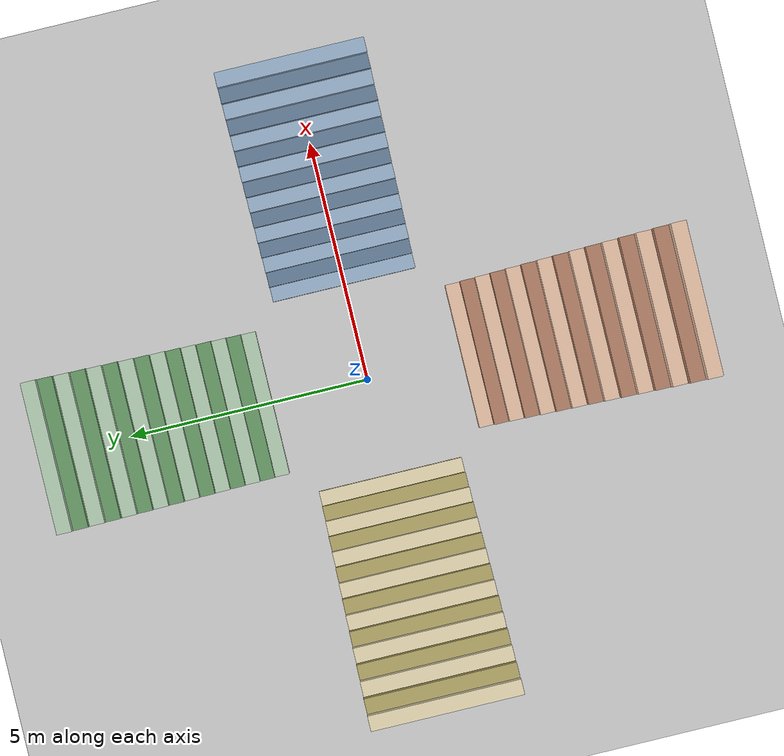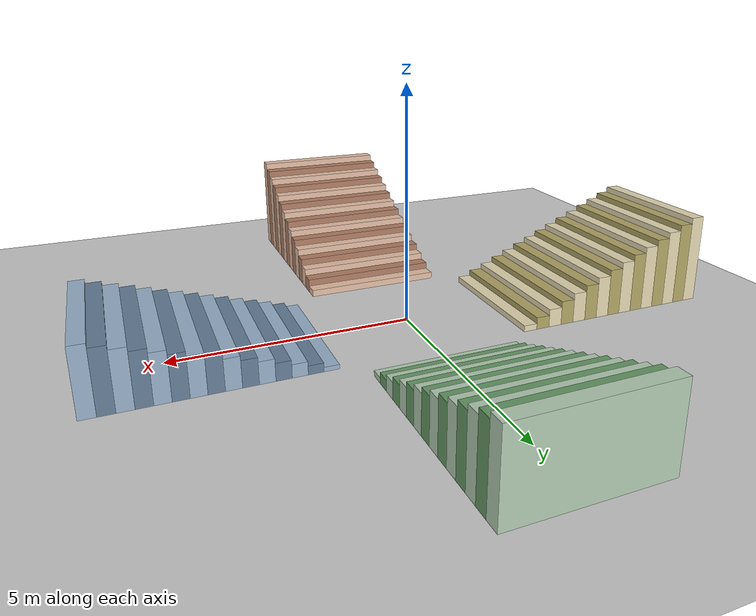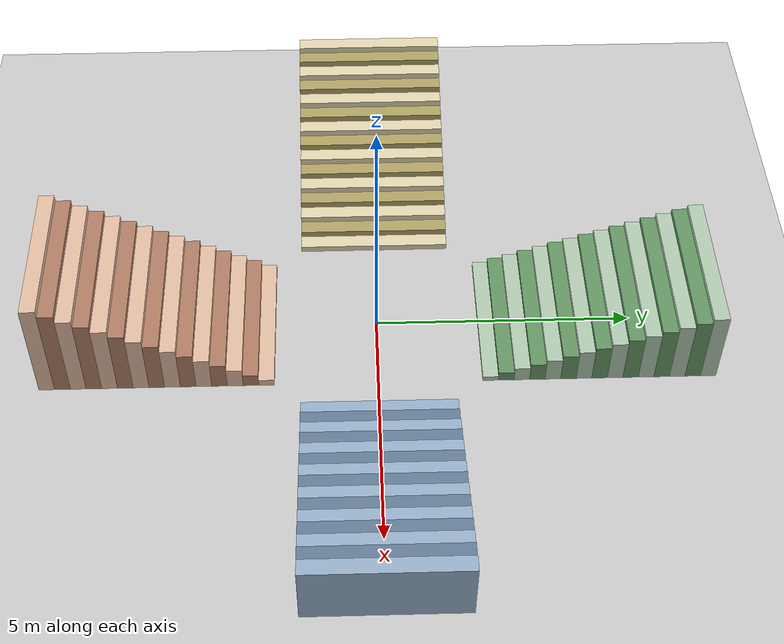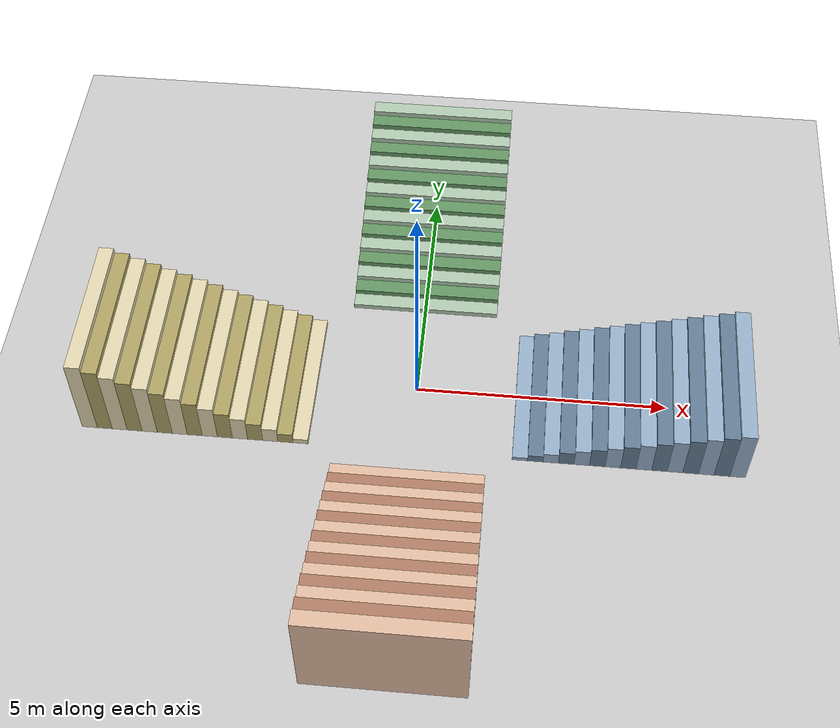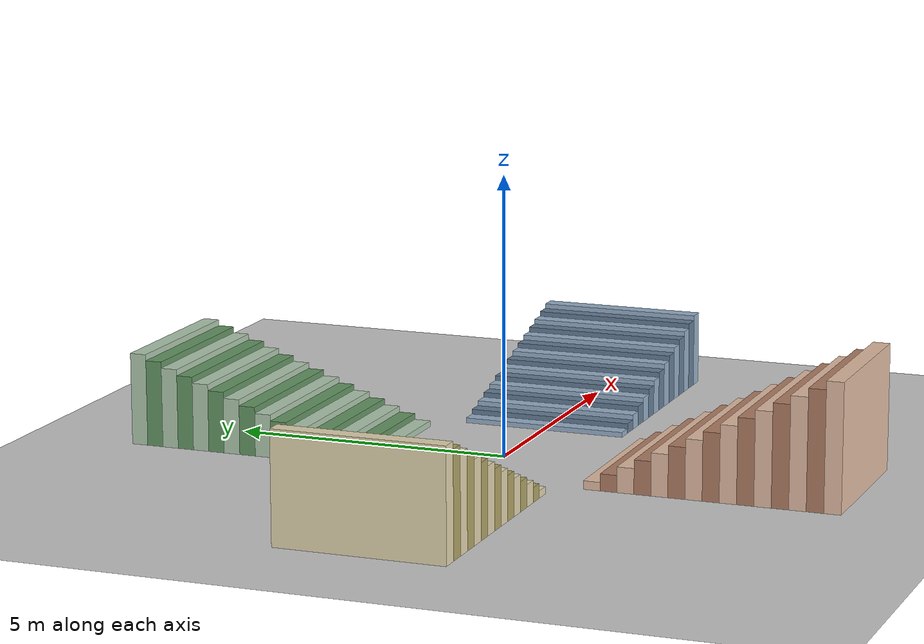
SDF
<?xml version="1.0" ?>
<sdf version="1.5">
  <world name="quadruped_stair_pro_v3_friction">

    <physics type="ode">
      <max_step_size>0.0005</max_step_size>
      <real_time_factor>1</real_time_factor>
      <real_time_update_rate>2000</real_time_update_rate>
      <gravity>0 0 -9.81</gravity>
      <ode>
        <solver>
          <type>quick</type>
          <iters>150</iters>
          <sor>1.0</sor>
        </solver>
        <constraints>
          <cfm>0.0001</cfm>
          <erp>0.2</erp>
          <contact_max_correcting_vel>10.0</contact_max_correcting_vel>
          <contact_surface_layer>0.001</contact_surface_layer>
        </constraints>
      </ode>
    </physics>

    <include><uri>model://sun</uri></include>

    <model name="ground_plane_friction">
      <static>true</static>
      <link name="link">
        <collision name="collision">
          <geometry><plane><normal>0 0 1</normal><size>100 100</size></plane></geometry>
          <surface>
            <friction>
              <ode><mu>1.0</mu><mu2>1.0</mu2></ode>
            </friction>
          </surface>
        </collision>
        <visual name="visual">
          <geometry><plane><normal>0 0 1</normal><size>100 100</size></plane></geometry>
          <material><ambient>0.8 0.8 0.8 1</ambient><diffuse>0.8 0.8 0.8 1</diffuse></material>
        </visual>
      </link>
    </model>

    <model name="stair_challenge_env">
        <static>true</static>

        <link name="step_9cm_1"><pose>2.15 0 0.045 0 0 0</pose><visual name="v"><geometry><box><size>0.3 3.0 0.09</size></box></geometry><material><ambient>0.6 0.7 0.8 1</ambient><diffuse>0.6 0.7 0.8 1</diffuse></material></visual><collision name="c"><geometry><box><size>0.3 3.0 0.09</size></box></geometry><surface><friction><ode><mu>1.0</mu><mu2>1.0</mu2></ode></friction></surface></collision></link>
        <link name="step_9cm_2"><pose>2.45 0 0.090 0 0 0</pose><visual name="v"><geometry><box><size>0.3 3.0 0.18</size></box></geometry><material><ambient>0.4 0.5 0.6 1</ambient><diffuse>0.4 0.5 0.6 1</diffuse></material></visual><collision name="c"><geometry><box><size>0.3 3.0 0.18</size></box></geometry><surface><friction><ode><mu>1.0</mu><mu2>1.0</mu2></ode></friction></surface></collision></link>
        <link name="step_9cm_3"><pose>2.75 0 0.135 0 0 0</pose><visual name="v"><geometry><box><size>0.3 3.0 0.27</size></box></geometry><material><ambient>0.6 0.7 0.8 1</ambient><diffuse>0.6 0.7 0.8 1</diffuse></material></visual><collision name="c"><geometry><box><size>0.3 3.0 0.27</size></box></geometry><surface><friction><ode><mu>1.0</mu><mu2>1.0</mu2></ode></friction></surface></collision></link>
        <link name="step_9cm_4"><pose>3.05 0 0.180 0 0 0</pose><visual name="v"><geometry><box><size>0.3 3.0 0.36</size></box></geometry><material><ambient>0.4 0.5 0.6 1</ambient><diffuse>0.4 0.5 0.6 1</diffuse></material></visual><collision name="c"><geometry><box><size>0.3 3.0 0.36</size></box></geometry><surface><friction><ode><mu>1.0</mu><mu2>1.0</mu2></ode></friction></surface></collision></link>
        <link name="step_9cm_5"><pose>3.35 0 0.225 0 0 0</pose><visual name="v"><geometry><box><size>0.3 3.0 0.45</size></box></geometry><material><ambient>0.6 0.7 0.8 1</ambient><diffuse>0.6 0.7 0.8 1</diffuse></material></visual><collision name="c"><geometry><box><size>0.3 3.0 0.45</size></box></geometry><surface><friction><ode><mu>1.0</mu><mu2>1.0</mu2></ode></friction></surface></collision></link>
        <link name="step_9cm_6"><pose>3.65 0 0.270 0 0 0</pose><visual name="v"><geometry><box><size>0.3 3.0 0.54</size></box></geometry><material><ambient>0.4 0.5 0.6 1</ambient><diffuse>0.4 0.5 0.6 1</diffuse></material></visual><collision name="c"><geometry><box><size>0.3 3.0 0.54</size></box></geometry><surface><friction><ode><mu>1.0</mu><mu2>1.0</mu2></ode></friction></surface></collision></link>
        <link name="step_9cm_7"><pose>3.95 0 0.315 0 0 0</pose><visual name="v"><geometry><box><size>0.3 3.0 0.63</size></box></geometry><material><ambient>0.6 0.7 0.8 1</ambient><diffuse>0.6 0.7 0.8 1</diffuse></material></visual><collision name="c"><geometry><box><size>0.3 3.0 0.63</size></box></geometry><surface><friction><ode><mu>1.0</mu><mu2>1.0</mu2></ode></friction></surface></collision></link>
        <link name="step_9cm_8"><pose>4.25 0 0.360 0 0 0</pose><visual name="v"><geometry><box><size>0.3 3.0 0.72</size></box></geometry><material><ambient>0.4 0.5 0.6 1</ambient><diffuse>0.4 0.5 0.6 1</diffuse></material></visual><collision name="c"><geometry><box><size>0.3 3.0 0.72</size></box></geometry><surface><friction><ode><mu>1.0</mu><mu2>1.0</mu2></ode></friction></surface></collision></link>
        <link name="step_9cm_9"><pose>4.55 0 0.405 0 0 0</pose><visual name="v"><geometry><box><size>0.3 3.0 0.81</size></box></geometry><material><ambient>0.6 0.7 0.8 1</ambient><diffuse>0.6 0.7 0.8 1</diffuse></material></visual><collision name="c"><geometry><box><size>0.3 3.0 0.81</size></box></geometry><surface><friction><ode><mu>1.0</mu><mu2>1.0</mu2></ode></friction></surface></collision></link>
        <link name="step_9cm_10"><pose>4.85 0 0.450 0 0 0</pose><visual name="v"><geometry><box><size>0.3 3.0 0.90</size></box></geometry><material><ambient>0.4 0.5 0.6 1</ambient><diffuse>0.4 0.5 0.6 1</diffuse></material></visual><collision name="c"><geometry><box><size>0.3 3.0 0.90</size></box></geometry><surface><friction><ode><mu>1.0</mu><mu2>1.0</mu2></ode></friction></surface></collision></link>
        <link name="step_9cm_11"><pose>5.15 0 0.495 0 0 0</pose><visual name="v"><geometry><box><size>0.3 3.0 0.99</size></box></geometry><material><ambient>0.6 0.7 0.8 1</ambient><diffuse>0.6 0.7 0.8 1</diffuse></material></visual><collision name="c"><geometry><box><size>0.3 3.0 0.99</size></box></geometry><surface><friction><ode><mu>1.0</mu><mu2>1.0</mu2></ode></friction></surface></collision></link>
        <link name="step_9cm_12"><pose>5.45 0 0.540 0 0 0</pose><visual name="v"><geometry><box><size>0.3 3.0 1.08</size></box></geometry><material><ambient>0.4 0.5 0.6 1</ambient><diffuse>0.4 0.5 0.6 1</diffuse></material></visual><collision name="c"><geometry><box><size>0.3 3.0 1.08</size></box></geometry><surface><friction><ode><mu>1.0</mu><mu2>1.0</mu2></ode></friction></surface></collision></link>
        <link name="step_9cm_13"><pose>5.75 0 0.585 0 0 0</pose><visual name="v"><geometry><box><size>0.3 3.0 1.17</size></box></geometry><material><ambient>0.6 0.7 0.8 1</ambient><diffuse>0.6 0.7 0.8 1</diffuse></material></visual><collision name="c"><geometry><box><size>0.3 3.0 1.17</size></box></geometry><surface><friction><ode><mu>1.0</mu><mu2>1.0</mu2></ode></friction></surface></collision></link>
        <link name="step_9cm_14"><pose>6.05 0 0.630 0 0 0</pose><visual name="v"><geometry><box><size>0.3 3.0 1.26</size></box></geometry><material><ambient>0.4 0.5 0.6 1</ambient><diffuse>0.4 0.5 0.6 1</diffuse></material></visual><collision name="c"><geometry><box><size>0.3 3.0 1.26</size></box></geometry><surface><friction><ode><mu>1.0</mu><mu2>1.0</mu2></ode></friction></surface></collision></link>
        <link name="step_9cm_15"><pose>6.35 0 0.675 0 0 0</pose><visual name="v"><geometry><box><size>0.3 3.0 1.35</size></box></geometry><material><ambient>0.6 0.7 0.8 1</ambient><diffuse>0.6 0.7 0.8 1</diffuse></material></visual><collision name="c"><geometry><box><size>0.3 3.0 1.35</size></box></geometry><surface><friction><ode><mu>1.0</mu><mu2>1.0</mu2></ode></friction></surface></collision></link>

        <link name="step_11cm_1"><pose>0 2.15 0.055 0 0 0</pose><visual name="v"><geometry><box><size>3.0 0.3 0.11</size></box></geometry><material><ambient>0.7 0.8 0.7 1</ambient><diffuse>0.7 0.8 0.7 1</diffuse></material></visual><collision name="c"><geometry><box><size>3.0 0.3 0.11</size></box></geometry><surface><friction><ode><mu>1.0</mu><mu2>1.0</mu2></ode></friction></surface></collision></link>
        <link name="step_11cm_2"><pose>0 2.45 0.110 0 0 0</pose><visual name="v"><geometry><box><size>3.0 0.3 0.22</size></box></geometry><material><ambient>0.4 0.6 0.4 1</ambient><diffuse>0.4 0.6 0.4 1</diffuse></material></visual><collision name="c"><geometry><box><size>3.0 0.3 0.22</size></box></geometry><surface><friction><ode><mu>1.0</mu><mu2>1.0</mu2></ode></friction></surface></collision></link>
        <link name="step_11cm_3"><pose>0 2.75 0.165 0 0 0</pose><visual name="v"><geometry><box><size>3.0 0.3 0.33</size></box></geometry><material><ambient>0.7 0.8 0.7 1</ambient><diffuse>0.7 0.8 0.7 1</diffuse></material></visual><collision name="c"><geometry><box><size>3.0 0.3 0.33</size></box></geometry><surface><friction><ode><mu>1.0</mu><mu2>1.0</mu2></ode></friction></surface></collision></link>
        <link name="step_11cm_4"><pose>0 3.05 0.220 0 0 0</pose><visual name="v"><geometry><box><size>3.0 0.3 0.44</size></box></geometry><material><ambient>0.4 0.6 0.4 1</ambient><diffuse>0.4 0.6 0.4 1</diffuse></material></visual><collision name="c"><geometry><box><size>3.0 0.3 0.44</size></box></geometry><surface><friction><ode><mu>1.0</mu><mu2>1.0</mu2></ode></friction></surface></collision></link>
        <link name="step_11cm_5"><pose>0 3.35 0.275 0 0 0</pose><visual name="v"><geometry><box><size>3.0 0.3 0.55</size></box></geometry><material><ambient>0.7 0.8 0.7 1</ambient><diffuse>0.7 0.8 0.7 1</diffuse></material></visual><collision name="c"><geometry><box><size>3.0 0.3 0.55</size></box></geometry><surface><friction><ode><mu>1.0</mu><mu2>1.0</mu2></ode></friction></surface></collision></link>
        <link name="step_11cm_6"><pose>0 3.65 0.330 0 0 0</pose><visual name="v"><geometry><box><size>3.0 0.3 0.66</size></box></geometry><material><ambient>0.4 0.6 0.4 1</ambient><diffuse>0.4 0.6 0.4 1</diffuse></material></visual><collision name="c"><geometry><box><size>3.0 0.3 0.66</size></box></geometry><surface><friction><ode><mu>1.0</mu><mu2>1.0</mu2></ode></friction></surface></collision></link>
        <link name="step_11cm_7"><pose>0 3.95 0.385 0 0 0</pose><visual name="v"><geometry><box><size>3.0 0.3 0.77</size></box></geometry><material><ambient>0.7 0.8 0.7 1</ambient><diffuse>0.7 0.8 0.7 1</diffuse></material></visual><collision name="c"><geometry><box><size>3.0 0.3 0.77</size></box></geometry><surface><friction><ode><mu>1.0</mu><mu2>1.0</mu2></ode></friction></surface></collision></link>
        <link name="step_11cm_8"><pose>0 4.25 0.440 0 0 0</pose><visual name="v"><geometry><box><size>3.0 0.3 0.88</size></box></geometry><material><ambient>0.4 0.6 0.4 1</ambient><diffuse>0.4 0.6 0.4 1</diffuse></material></visual><collision name="c"><geometry><box><size>3.0 0.3 0.88</size></box></geometry><surface><friction><ode><mu>1.0</mu><mu2>1.0</mu2></ode></friction></surface></collision></link>
        <link name="step_11cm_9"><pose>0 4.55 0.495 0 0 0</pose><visual name="v"><geometry><box><size>3.0 0.3 0.99</size></box></geometry><material><ambient>0.7 0.8 0.7 1</ambient><diffuse>0.7 0.8 0.7 1</diffuse></material></visual><collision name="c"><geometry><box><size>3.0 0.3 0.99</size></box></geometry><surface><friction><ode><mu>1.0</mu><mu2>1.0</mu2></ode></friction></surface></collision></link>
        <link name="step_11cm_10"><pose>0 4.85 0.550 0 0 0</pose><visual name="v"><geometry><box><size>3.0 0.3 1.10</size></box></geometry><material><ambient>0.4 0.6 0.4 1</ambient><diffuse>0.4 0.6 0.4 1</diffuse></material></visual><collision name="c"><geometry><box><size>3.0 0.3 1.10</size></box></geometry><surface><friction><ode><mu>1.0</mu><mu2>1.0</mu2></ode></friction></surface></collision></link>
        <link name="step_11cm_11"><pose>0 5.15 0.605 0 0 0</pose><visual name="v"><geometry><box><size>3.0 0.3 1.21</size></box></geometry><material><ambient>0.7 0.8 0.7 1</ambient><diffuse>0.7 0.8 0.7 1</diffuse></material></visual><collision name="c"><geometry><box><size>3.0 0.3 1.21</size></box></geometry><surface><friction><ode><mu>1.0</mu><mu2>1.0</mu2></ode></friction></surface></collision></link>
        <link name="step_11cm_12"><pose>0 5.45 0.660 0 0 0</pose><visual name="v"><geometry><box><size>3.0 0.3 1.32</size></box></geometry><material><ambient>0.4 0.6 0.4 1</ambient><diffuse>0.4 0.6 0.4 1</diffuse></material></visual><collision name="c"><geometry><box><size>3.0 0.3 1.32</size></box></geometry><surface><friction><ode><mu>1.0</mu><mu2>1.0</mu2></ode></friction></surface></collision></link>
        <link name="step_11cm_13"><pose>0 5.75 0.715 0 0 0</pose><visual name="v"><geometry><box><size>3.0 0.3 1.43</size></box></geometry><material><ambient>0.7 0.8 0.7 1</ambient><diffuse>0.7 0.8 0.7 1</diffuse></material></visual><collision name="c"><geometry><box><size>3.0 0.3 1.43</size></box></geometry><surface><friction><ode><mu>1.0</mu><mu2>1.0</mu2></ode></friction></surface></collision></link>
        <link name="step_11cm_14"><pose>0 6.05 0.770 0 0 0</pose><visual name="v"><geometry><box><size>3.0 0.3 1.54</size></box></geometry><material><ambient>0.4 0.6 0.4 1</ambient><diffuse>0.4 0.6 0.4 1</diffuse></material></visual><collision name="c"><geometry><box><size>3.0 0.3 1.54</size></box></geometry><surface><friction><ode><mu>1.0</mu><mu2>1.0</mu2></ode></friction></surface></collision></link>
        <link name="step_11cm_15"><pose>0 6.35 0.825 0 0 0</pose><visual name="v"><geometry><box><size>3.0 0.3 1.65</size></box></geometry><material><ambient>0.7 0.8 0.7 1</ambient><diffuse>0.7 0.8 0.7 1</diffuse></material></visual><collision name="c"><geometry><box><size>3.0 0.3 1.65</size></box></geometry><surface><friction><ode><mu>1.0</mu><mu2>1.0</mu2></ode></friction></surface></collision></link>

        <link name="step_13cm_1"><pose>-2.15 0 0.065 0 0 0</pose><visual name="v"><geometry><box><size>0.3 3.0 0.13</size></box></geometry><material><ambient>0.9 0.85 0.7 1</ambient><diffuse>0.9 0.85 0.7 1</diffuse></material></visual><collision name="c"><geometry><box><size>0.3 3.0 0.13</size></box></geometry><surface><friction><ode><mu>1.0</mu><mu2>1.0</mu2></ode></friction></surface></collision></link>
        <link name="step_13cm_2"><pose>-2.45 0 0.130 0 0 0</pose><visual name="v"><geometry><box><size>0.3 3.0 0.26</size></box></geometry><material><ambient>0.7 0.65 0.4 1</ambient><diffuse>0.7 0.65 0.4 1</diffuse></material></visual><collision name="c"><geometry><box><size>0.3 3.0 0.26</size></box></geometry><surface><friction><ode><mu>1.0</mu><mu2>1.0</mu2></ode></friction></surface></collision></link>
        <link name="step_13cm_3"><pose>-2.75 0 0.195 0 0 0</pose><visual name="v"><geometry><box><size>0.3 3.0 0.39</size></box></geometry><material><ambient>0.9 0.85 0.7 1</ambient><diffuse>0.9 0.85 0.7 1</diffuse></material></visual><collision name="c"><geometry><box><size>0.3 3.0 0.39</size></box></geometry><surface><friction><ode><mu>1.0</mu><mu2>1.0</mu2></ode></friction></surface></collision></link>
        <link name="step_13cm_4"><pose>-3.05 0 0.260 0 0 0</pose><visual name="v"><geometry><box><size>0.3 3.0 0.52</size></box></geometry><material><ambient>0.7 0.65 0.4 1</ambient><diffuse>0.7 0.65 0.4 1</diffuse></material></visual><collision name="c"><geometry><box><size>0.3 3.0 0.52</size></box></geometry><surface><friction><ode><mu>1.0</mu><mu2>1.0</mu2></ode></friction></surface></collision></link>
        <link name="step_13cm_5"><pose>-3.35 0 0.325 0 0 0</pose><visual name="v"><geometry><box><size>0.3 3.0 0.65</size></box></geometry><material><ambient>0.9 0.85 0.7 1</ambient><diffuse>0.9 0.85 0.7 1</diffuse></material></visual><collision name="c"><geometry><box><size>0.3 3.0 0.65</size></box></geometry><surface><friction><ode><mu>1.0</mu><mu2>1.0</mu2></ode></friction></surface></collision></link>
        <link name="step_13cm_6"><pose>-3.65 0 0.390 0 0 0</pose><visual name="v"><geometry><box><size>0.3 3.0 0.78</size></box></geometry><material><ambient>0.7 0.65 0.4 1</ambient><diffuse>0.7 0.65 0.4 1</diffuse></material></visual><collision name="c"><geometry><box><size>0.3 3.0 0.78</size></box></geometry><surface><friction><ode><mu>1.0</mu><mu2>1.0</mu2></ode></friction></surface></collision></link>
        <link name="step_13cm_7"><pose>-3.95 0 0.455 0 0 0</pose><visual name="v"><geometry><box><size>0.3 3.0 0.91</size></box></geometry><material><ambient>0.9 0.85 0.7 1</ambient><diffuse>0.9 0.85 0.7 1</diffuse></material></visual><collision name="c"><geometry><box><size>0.3 3.0 0.91</size></box></geometry><surface><friction><ode><mu>1.0</mu><mu2>1.0</mu2></ode></friction></surface></collision></link>
        <link name="step_13cm_8"><pose>-4.25 0 0.520 0 0 0</pose><visual name="v"><geometry><box><size>0.3 3.0 1.04</size></box></geometry><material><ambient>0.7 0.65 0.4 1</ambient><diffuse>0.7 0.65 0.4 1</diffuse></material></visual><collision name="c"><geometry><box><size>0.3 3.0 1.04</size></box></geometry><surface><friction><ode><mu>1.0</mu><mu2>1.0</mu2></ode></friction></surface></collision></link>
        <link name="step_13cm_9"><pose>-4.55 0 0.585 0 0 0</pose><visual name="v"><geometry><box><size>0.3 3.0 1.17</size></box></geometry><material><ambient>0.9 0.85 0.7 1</ambient><diffuse>0.9 0.85 0.7 1</diffuse></material></visual><collision name="c"><geometry><box><size>0.3 3.0 1.17</size></box></geometry><surface><friction><ode><mu>1.0</mu><mu2>1.0</mu2></ode></friction></surface></collision></link>
        <link name="step_13cm_10"><pose>-4.85 0 0.650 0 0 0</pose><visual name="v"><geometry><box><size>0.3 3.0 1.30</size></box></geometry><material><ambient>0.7 0.65 0.4 1</ambient><diffuse>0.7 0.65 0.4 1</diffuse></material></visual><collision name="c"><geometry><box><size>0.3 3.0 1.30</size></box></geometry><surface><friction><ode><mu>1.0</mu><mu2>1.0</mu2></ode></friction></surface></collision></link>
        <link name="step_13cm_11"><pose>-5.15 0 0.715 0 0 0</pose><visual name="v"><geometry><box><size>0.3 3.0 1.43</size></box></geometry><material><ambient>0.9 0.85 0.7 1</ambient><diffuse>0.9 0.85 0.7 1</diffuse></material></visual><collision name="c"><geometry><box><size>0.3 3.0 1.43</size></box></geometry><surface><friction><ode><mu>1.0</mu><mu2>1.0</mu2></ode></friction></surface></collision></link>
        <link name="step_13cm_12"><pose>-5.45 0 0.780 0 0 0</pose><visual name="v"><geometry><box><size>0.3 3.0 1.56</size></box></geometry><material><ambient>0.7 0.65 0.4 1</ambient><diffuse>0.7 0.65 0.4 1</diffuse></material></visual><collision name="c"><geometry><box><size>0.3 3.0 1.56</size></box></geometry><surface><friction><ode><mu>1.0</mu><mu2>1.0</mu2></ode></friction></surface></collision></link>
        <link name="step_13cm_13"><pose>-5.75 0 0.845 0 0 0</pose><visual name="v"><geometry><box><size>0.3 3.0 1.69</size></box></geometry><material><ambient>0.9 0.85 0.7 1</ambient><diffuse>0.9 0.85 0.7 1</diffuse></material></visual><collision name="c"><geometry><box><size>0.3 3.0 1.69</size></box></geometry><surface><friction><ode><mu>1.0</mu><mu2>1.0</mu2></ode></friction></surface></collision></link>
        <link name="step_13cm_14"><pose>-6.05 0 0.910 0 0 0</pose><visual name="v"><geometry><box><size>0.3 3.0 1.82</size></box></geometry><material><ambient>0.7 0.65 0.4 1</ambient><diffuse>0.7 0.65 0.4 1</diffuse></material></visual><collision name="c"><geometry><box><size>0.3 3.0 1.82</size></box></geometry><surface><friction><ode><mu>1.0</mu><mu2>1.0</mu2></ode></friction></surface></collision></link>
        <link name="step_13cm_15"><pose>-6.35 0 0.975 0 0 0</pose><visual name="v"><geometry><box><size>0.3 3.0 1.95</size></box></geometry><material><ambient>0.9 0.85 0.7 1</ambient><diffuse>0.9 0.85 0.7 1</diffuse></material></visual><collision name="c"><geometry><box><size>0.3 3.0 1.95</size></box></geometry><surface><friction><ode><mu>1.0</mu><mu2>1.0</mu2></ode></friction></surface></collision></link>

        <link name="step_15cm_1"><pose>0 -2.15 0.075 0 0 0</pose><visual name="v"><geometry><box><size>3.0 0.3 0.15</size></box></geometry><material><ambient>0.9 0.75 0.65 1</ambient><diffuse>0.9 0.75 0.65 1</diffuse></material></visual><collision name="c"><geometry><box><size>3.0 0.3 0.15</size></box></geometry><surface><friction><ode><mu>1.0</mu><mu2>1.0</mu2></ode></friction></surface></collision></link>
        <link name="step_15cm_2"><pose>0 -2.45 0.150 0 0 0</pose><visual name="v"><geometry><box><size>3.0 0.3 0.30</size></box></geometry><material><ambient>0.7 0.5 0.4 1</ambient><diffuse>0.7 0.5 0.4 1</diffuse></material></visual><collision name="c"><geometry><box><size>3.0 0.3 0.30</size></box></geometry><surface><friction><ode><mu>1.0</mu><mu2>1.0</mu2></ode></friction></surface></collision></link>
        <link name="step_15cm_3"><pose>0 -2.75 0.225 0 0 0</pose><visual name="v"><geometry><box><size>3.0 0.3 0.45</size></box></geometry><material><ambient>0.9 0.75 0.65 1</ambient><diffuse>0.9 0.75 0.65 1</diffuse></material></visual><collision name="c"><geometry><box><size>3.0 0.3 0.45</size></box></geometry><surface><friction><ode><mu>1.0</mu><mu2>1.0</mu2></ode></friction></surface></collision></link>
        <link name="step_15cm_4"><pose>0 -3.05 0.300 0 0 0</pose><visual name="v"><geometry><box><size>3.0 0.3 0.60</size></box></geometry><material><ambient>0.7 0.5 0.4 1</ambient><diffuse>0.7 0.5 0.4 1</diffuse></material></visual><collision name="c"><geometry><box><size>3.0 0.3 0.60</size></box></geometry><surface><friction><ode><mu>1.0</mu><mu2>1.0</mu2></ode></friction></surface></collision></link>
        <link name="step_15cm_5"><pose>0 -3.35 0.375 0 0 0</pose><visual name="v"><geometry><box><size>3.0 0.3 0.75</size></box></geometry><material><ambient>0.9 0.75 0.65 1</ambient><diffuse>0.9 0.75 0.65 1</diffuse></material></visual><collision name="c"><geometry><box><size>3.0 0.3 0.75</size></box></geometry><surface><friction><ode><mu>1.0</mu><mu2>1.0</mu2></ode></friction></surface></collision></link>
        <link name="step_15cm_6"><pose>0 -3.65 0.450 0 0 0</pose><visual name="v"><geometry><box><size>3.0 0.3 0.90</size></box></geometry><material><ambient>0.7 0.5 0.4 1</ambient><diffuse>0.7 0.5 0.4 1</diffuse></material></visual><collision name="c"><geometry><box><size>3.0 0.3 0.90</size></box></geometry><surface><friction><ode><mu>1.0</mu><mu2>1.0</mu2></ode></friction></surface></collision></link>
        <link name="step_15cm_7"><pose>0 -3.95 0.525 0 0 0</pose><visual name="v"><geometry><box><size>3.0 0.3 1.05</size></box></geometry><material><ambient>0.9 0.75 0.65 1</ambient><diffuse>0.9 0.75 0.65 1</diffuse></material></visual><collision name="c"><geometry><box><size>3.0 0.3 1.05</size></box></geometry><surface><friction><ode><mu>1.0</mu><mu2>1.0</mu2></ode></friction></surface></collision></link>
        <link name="step_15cm_8"><pose>0 -4.25 0.600 0 0 0</pose><visual name="v"><geometry><box><size>3.0 0.3 1.20</size></box></geometry><material><ambient>0.7 0.5 0.4 1</ambient><diffuse>0.7 0.5 0.4 1</diffuse></material></visual><collision name="c"><geometry><box><size>3.0 0.3 1.20</size></box></geometry><surface><friction><ode><mu>1.0</mu><mu2>1.0</mu2></ode></friction></surface></collision></link>
        <link name="step_15cm_9"><pose>0 -4.55 0.675 0 0 0</pose><visual name="v"><geometry><box><size>3.0 0.3 1.35</size></box></geometry><material><ambient>0.9 0.75 0.65 1</ambient><diffuse>0.9 0.75 0.65 1</diffuse></material></visual><collision name="c"><geometry><box><size>3.0 0.3 1.35</size></box></geometry><surface><friction><ode><mu>1.0</mu><mu2>1.0</mu2></ode></friction></surface></collision></link>
        <link name="step_15cm_10"><pose>0 -4.85 0.750 0 0 0</pose><visual name="v"><geometry><box><size>3.0 0.3 1.50</size></box></geometry><material><ambient>0.7 0.5 0.4 1</ambient><diffuse>0.7 0.5 0.4 1</diffuse></material></visual><collision name="c"><geometry><box><size>3.0 0.3 1.50</size></box></geometry><surface><friction><ode><mu>1.0</mu><mu2>1.0</mu2></ode></friction></surface></collision></link>
        <link name="step_15cm_11"><pose>0 -5.15 0.825 0 0 0</pose><visual name="v"><geometry><box><size>3.0 0.3 1.65</size></box></geometry><material><ambient>0.9 0.75 0.65 1</ambient><diffuse>0.9 0.75 0.65 1</diffuse></material></visual><collision name="c"><geometry><box><size>3.0 0.3 1.65</size></box></geometry><surface><friction><ode><mu>1.0</mu><mu2>1.0</mu2></ode></friction></surface></collision></link>
        <link name="step_15cm_12"><pose>0 -5.45 0.900 0 0 0</pose><visual name="v"><geometry><box><size>3.0 0.3 1.80</size></box></geometry><material><ambient>0.7 0.5 0.4 1</ambient><diffuse>0.7 0.5 0.4 1</diffuse></material></visual><collision name="c"><geometry><box><size>3.0 0.3 1.80</size></box></geometry><surface><friction><ode><mu>1.0</mu><mu2>1.0</mu2></ode></friction></surface></collision></link>
        <link name="step_15cm_13"><pose>0 -5.75 0.975 0 0 0</pose><visual name="v"><geometry><box><size>3.0 0.3 1.95</size></box></geometry><material><ambient>0.9 0.75 0.65 1</ambient><diffuse>0.9 0.75 0.65 1</diffuse></material></visual><collision name="c"><geometry><box><size>3.0 0.3 1.95</size></box></geometry><surface><friction><ode><mu>1.0</mu><mu2>1.0</mu2></ode></friction></surface></collision></link>
        <link name="step_15cm_14"><pose>0 -6.05 1.050 0 0 0</pose><visual name="v"><geometry><box><size>3.0 0.3 2.10</size></box></geometry><material><ambient>0.7 0.5 0.4 1</ambient><diffuse>0.7 0.5 0.4 1</diffuse></material></visual><collision name="c"><geometry><box><size>3.0 0.3 2.10</size></box></geometry><surface><friction><ode><mu>1.0</mu><mu2>1.0</mu2></ode></friction></surface></collision></link>
        <link name="step_15cm_15"><pose>0 -6.35 1.125 0 0 0</pose><visual name="v"><geometry><box><size>3.0 0.3 2.25</size></box></geometry><material><ambient>0.9 0.75 0.65 1</ambient><diffuse>0.9 0.75 0.65 1</diffuse></material></visual><collision name="c"><geometry><box><size>3.0 0.3 2.25</size></box></geometry><surface><friction><ode><mu>1.0</mu><mu2>1.0</mu2></ode></friction></surface></collision></link>
    </model>
  </world>
</sdf>
